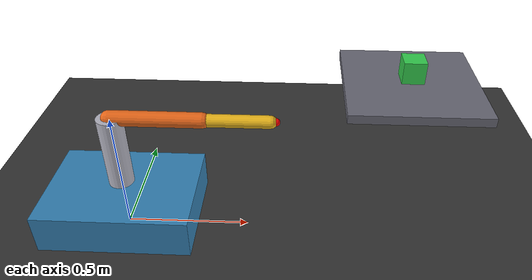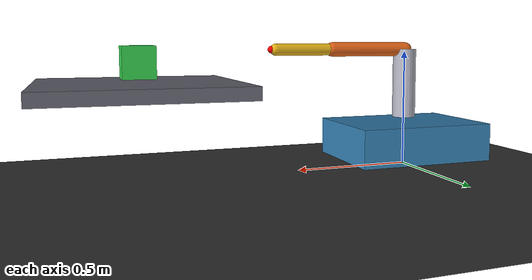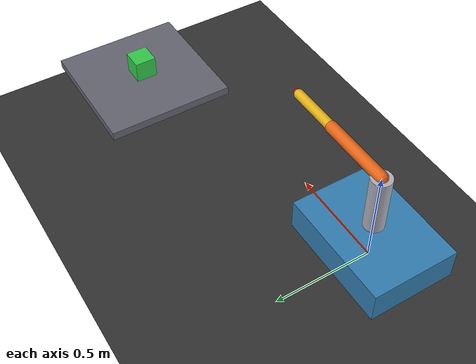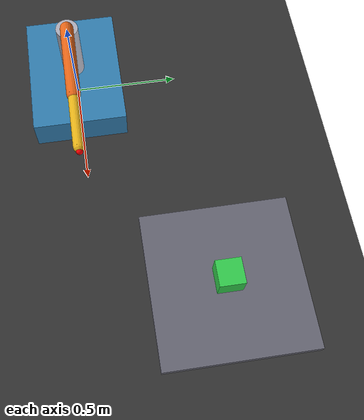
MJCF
<mujoco>
  <compiler angle="radian"/>

  <worldbody>
    <light pos="0 -2 3" dir="0 0.5 -1"/>
    <geom name="floor" type="plane" size="10 10 0.1" rgba="0.2 0.2 0.2 1"/>

    <!-- ===== AMR 底盤（平面式簡化模型）===== -->
    <body name="base" pos="0 0 0.11">
      <joint name="move_x" type="slide" axis="1 0 0" damping="2"/>
      <joint name="move_y" type="slide" axis="0 1 0" damping="2"/>
      <joint name="yaw"    type="hinge" axis="0 0 1" damping="2"/>
      <geom type="box" size="0.3 0.22 0.08" rgba="0.2 0.5 0.7 1"/>

      <!-- ===== 車載二軸機械手臂 ===== -->
      <body name="arm_link1" pos="0 0 0.10">
        <joint name="shoulder" type="hinge" axis="0 0 1" damping="0.5"/>
        <geom type="cylinder" size="0.05 0.15" pos="0 0 0.15" rgba="0.7 0.7 0.75 1"/>
        <body name="arm_link2" pos="0 0 0.3">
          <joint name="elbow" type="hinge" axis="0 1 0" damping="0.5" range="-2.8 2.8"/>
          <geom type="capsule" fromto="0 0 0 0.35 0 0" size="0.03" rgba="0.9 0.4 0.1 1"/>
          <body name="arm_link3" pos="0.35 0 0">
            <joint name="wrist" type="hinge" axis="0 1 0" damping="0.3" range="-2.8 2.8"/>
            <geom type="capsule" fromto="0 0 0 0.25 0 0" size="0.025" rgba="0.9 0.7 0.1 1"/>
            <site name="ee" pos="0.27 0 0" size="0.015" rgba="1 0 0 1"/>
          </body>
        </body>
      </body>
    </body>

    <!-- 目標貨物（要抓取的箱子，放在貨架上） -->
    <geom name="shelf" type="box" size="0.3 0.3 0.02" pos="1.2 0.5 0.4" rgba="0.4 0.4 0.45 1"/>
    <body name="box_target" pos="1.2 0.5 0.48">
      <freejoint/>
      <geom type="box" size="0.05 0.05 0.05" rgba="0.2 0.8 0.3 1" mass="0.3"/>
    </body>
  </worldbody>

  <actuator>
    <velocity name="vx"   joint="move_x" kv="60" ctrlrange="-1.5 1.5"/>
    <velocity name="vy"   joint="move_y" kv="60" ctrlrange="-1.5 1.5"/>
    <velocity name="wyaw" joint="yaw"    kv="10" ctrlrange="-2 2"/>
    <position name="shoulder_ctl" joint="shoulder" kp="100" ctrllimited="true" ctrlrange="-3.14 3.14"/>
    <position name="elbow_ctl"    joint="elbow"    kp="100" ctrllimited="true" ctrlrange="-2.8 2.8"/>
    <position name="wrist_ctl"    joint="wrist"    kp="60"  ctrllimited="true" ctrlrange="-2.8 2.8"/>
  </actuator>

  <sensor>
    <framepos objtype="site" objname="ee"/>
  </sensor>
</mujoco>
